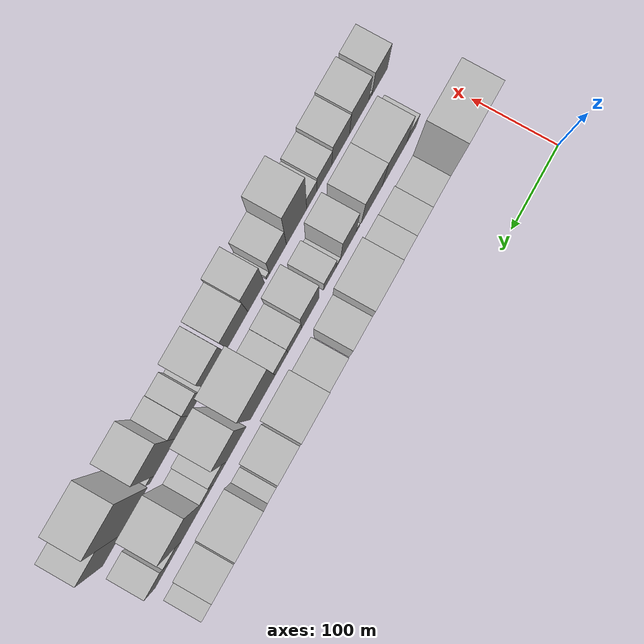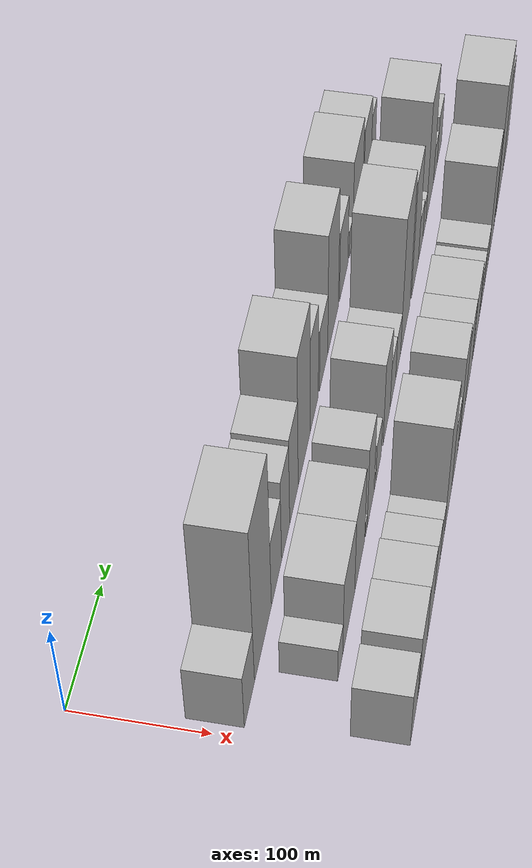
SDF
<sdf version="1.6">
 <world name="default">
  <model name="building_16">
   <static>1</static>
   <pose>100.0000 25.9235 0 0.000000 0.000000 0.000000</pose>
   <link name="link">
    <pose>0 0 31.50 0 0 0</pose>
    <collision name="collision"><geometry><box><size>40.0000 34.9801 63.0000</size></box></geometry></collision>
    <visual name="visual">
     <cast_shadows>0</cast_shadows>
     <geometry><box><size>40.0000 34.9801 63.0000</size></box></geometry>
     <material>
      <script>
       <uri>model://HANNAS_wall/materials/scripts</uri>
       <uri>model://HANNAS_wall/materials/textures</uri>
       <name>vrc/HANNAS_wall</name>
      </script>
     </material>
    </visual>
   </link>
  </model>
  <model name="building_17">
   <static>1</static>
   <pose>100.0000 73.7770 0 0.000000 0.000000 0.000000</pose>
   <link name="link">
    <pose>0 0 88.50 0 0 0</pose>
    <collision name="collision"><geometry><box><size>40.0000 60.7268 177.0000</size></box></geometry></collision>
    <visual name="visual">
     <cast_shadows>0</cast_shadows>
     <geometry><box><size>40.0000 60.7268 177.0000</size></box></geometry>
     <material>
      <script>
       <uri>model://HANNAS_wall/materials/scripts</uri>
       <uri>model://HANNAS_wall/materials/textures</uri>
       <name>vrc/HANNAS_wall</name>
      </script>
     </material>
    </visual>
   </link>
  </model>
  <model name="building_18">
   <static>1</static>
   <pose>100.0000 123.2803 0 0.000000 0.000000 0.000000</pose>
   <link name="link">
    <pose>0 0 37.50 0 0 0</pose>
    <collision name="collision"><geometry><box><size>40.0000 38.2798 75.0000</size></box></geometry></collision>
    <visual name="visual">
     <cast_shadows>0</cast_shadows>
     <geometry><box><size>40.0000 38.2798 75.0000</size></box></geometry>
     <material>
      <script>
       <uri>model://HANNAS_wall/materials/scripts</uri>
       <uri>model://HANNAS_wall/materials/textures</uri>
       <name>vrc/HANNAS_wall</name>
      </script>
     </material>
    </visual>
   </link>
  </model>
  <model name="building_19">
   <static>1</static>
   <pose>100.0000 158.1278 0 0.000000 0.000000 0.000000</pose>
   <link name="link">
    <pose>0 0 46.50 0 0 0</pose>
    <collision name="collision"><geometry><box><size>40.0000 31.4152 93.0000</size></box></geometry></collision>
    <visual name="visual">
     <cast_shadows>0</cast_shadows>
     <geometry><box><size>40.0000 31.4152 93.0000</size></box></geometry>
     <material>
      <script>
       <uri>model://HANNAS_wall/materials/scripts</uri>
       <uri>model://HANNAS_wall/materials/textures</uri>
       <name>vrc/HANNAS_wall</name>
      </script>
     </material>
    </visual>
   </link>
  </model>
  <model name="building_20">
   <static>1</static>
   <pose>100.0000 190.8408 0 0.000000 0.000000 0.000000</pose>
   <link name="link">
    <pose>0 0 49.50 0 0 0</pose>
    <collision name="collision"><geometry><box><size>40.0000 34.0107 99.0000</size></box></geometry></collision>
    <visual name="visual">
     <cast_shadows>0</cast_shadows>
     <geometry><box><size>40.0000 34.0107 99.0000</size></box></geometry>
     <material>
      <script>
       <uri>model://HANNAS_wall/materials/scripts</uri>
       <uri>model://HANNAS_wall/materials/textures</uri>
       <name>vrc/HANNAS_wall</name>
      </script>
     </material>
    </visual>
   </link>
  </model>
  <model name="building_21">
   <static>1</static>
   <pose>100.0000 232.6172 0 0.000000 0.000000 0.000000</pose>
   <link name="link">
    <pose>0 0 73.50 0 0 0</pose>
    <collision name="collision"><geometry><box><size>40.0000 49.5420 147.0000</size></box></geometry></collision>
    <visual name="visual">
     <cast_shadows>0</cast_shadows>
     <geometry><box><size>40.0000 49.5420 147.0000</size></box></geometry>
     <material>
      <script>
       <uri>model://HANNAS_wall/materials/scripts</uri>
       <uri>model://HANNAS_wall/materials/textures</uri>
       <name>vrc/HANNAS_wall</name>
      </script>
     </material>
    </visual>
   </link>
  </model>
  <model name="building_22">
   <static>1</static>
   <pose>100.0000 274.8088 0 0.000000 0.000000 0.000000</pose>
   <link name="link">
    <pose>0 0 52.50 0 0 0</pose>
    <collision name="collision"><geometry><box><size>40.0000 34.8413 105.0000</size></box></geometry></collision>
    <visual name="visual">
     <cast_shadows>0</cast_shadows>
     <geometry><box><size>40.0000 34.8413 105.0000</size></box></geometry>
     <material>
      <script>
       <uri>model://HANNAS_wall/materials/scripts</uri>
       <uri>model://HANNAS_wall/materials/textures</uri>
       <name>vrc/HANNAS_wall</name>
      </script>
     </material>
    </visual>
   </link>
  </model>
  <model name="building_23">
   <static>1</static>
   <pose>100.0000 315.7311 0 0.000000 0.000000 0.000000</pose>
   <link name="link">
    <pose>0 0 34.50 0 0 0</pose>
    <collision name="collision"><geometry><box><size>40.0000 37.0033 69.0000</size></box></geometry></collision>
    <visual name="visual">
     <cast_shadows>0</cast_shadows>
     <geometry><box><size>40.0000 37.0033 69.0000</size></box></geometry>
     <material>
      <script>
       <uri>model://HANNAS_wall/materials/scripts</uri>
       <uri>model://HANNAS_wall/materials/textures</uri>
       <name>vrc/HANNAS_wall</name>
      </script>
     </material>
    </visual>
   </link>
  </model>
  <model name="building_24">
   <static>1</static>
   <pose>100.0000 358.8089 0 0.000000 0.000000 0.000000</pose>
   <link name="link">
    <pose>0 0 66.00 0 0 0</pose>
    <collision name="collision"><geometry><box><size>40.0000 49.1523 132.0000</size></box></geometry></collision>
    <visual name="visual">
     <cast_shadows>0</cast_shadows>
     <geometry><box><size>40.0000 49.1523 132.0000</size></box></geometry>
     <material>
      <script>
       <uri>model://HANNAS_wall/materials/scripts</uri>
       <uri>model://HANNAS_wall/materials/textures</uri>
       <name>vrc/HANNAS_wall</name>
      </script>
     </material>
    </visual>
   </link>
  </model>
  <model name="building_25">
   <static>1</static>
   <pose>100.0000 408.5758 0 0.000000 0.000000 0.000000</pose>
   <link name="link">
    <pose>0 0 39.00 0 0 0</pose>
    <collision name="collision"><geometry><box><size>40.0000 40.3815 78.0000</size></box></geometry></collision>
    <visual name="visual">
     <cast_shadows>0</cast_shadows>
     <geometry><box><size>40.0000 40.3815 78.0000</size></box></geometry>
     <material>
      <script>
       <uri>model://HANNAS_wall/materials/scripts</uri>
       <uri>model://HANNAS_wall/materials/textures</uri>
       <name>vrc/HANNAS_wall</name>
      </script>
     </material>
    </visual>
   </link>
  </model>
  <model name="building_26">
   <static>1</static>
   <pose>100.0000 444.1921 0 0.000000 0.000000 0.000000</pose>
   <link name="link">
    <pose>0 0 15.00 0 0 0</pose>
    <collision name="collision"><geometry><box><size>40.0000 16.8511 30.0000</size></box></geometry></collision>
    <visual name="visual">
     <cast_shadows>0</cast_shadows>
     <geometry><box><size>40.0000 16.8511 30.0000</size></box></geometry>
     <material>
      <script>
       <uri>model://HANNAS_wall/materials/scripts</uri>
       <uri>model://HANNAS_wall/materials/textures</uri>
       <name>vrc/HANNAS_wall</name>
      </script>
     </material>
    </visual>
   </link>
  </model>
  <model name="building_27">
   <static>1</static>
   <pose>100.0000 478.0710 0 0.000000 0.000000 0.000000</pose>
   <link name="link">
    <pose>0 0 45.00 0 0 0</pose>
    <collision name="collision"><geometry><box><size>40.0000 50.9065 90.0000</size></box></geometry></collision>
    <visual name="visual">
     <cast_shadows>0</cast_shadows>
     <geometry><box><size>40.0000 50.9065 90.0000</size></box></geometry>
     <material>
      <script>
       <uri>model://HANNAS_wall/materials/scripts</uri>
       <uri>model://HANNAS_wall/materials/textures</uri>
       <name>vrc/HANNAS_wall</name>
      </script>
     </material>
    </visual>
   </link>
  </model>
  <model name="building_28">
   <static>1</static>
   <pose>100.0000 528.5222 0 0.000000 0.000000 0.000000</pose>
   <link name="link">
    <pose>0 0 36.00 0 0 0</pose>
    <collision name="collision"><geometry><box><size>40.0000 39.9960 72.0000</size></box></geometry></collision>
    <visual name="visual">
     <cast_shadows>0</cast_shadows>
     <geometry><box><size>40.0000 39.9960 72.0000</size></box></geometry>
     <material>
      <script>
       <uri>model://HANNAS_wall/materials/scripts</uri>
       <uri>model://HANNAS_wall/materials/textures</uri>
       <name>vrc/HANNAS_wall</name>
      </script>
     </material>
    </visual>
   </link>
  </model>
  <model name="building_29">
   <static>1</static>
   <pose>100.0000 560.6177 0 0.000000 0.000000 0.000000</pose>
   <link name="link">
    <pose>0 0 24.00 0 0 0</pose>
    <collision name="collision"><geometry><box><size>40.0000 24.1950 48.0000</size></box></geometry></collision>
    <visual name="visual">
     <cast_shadows>0</cast_shadows>
     <geometry><box><size>40.0000 24.1950 48.0000</size></box></geometry>
     <material>
      <script>
       <uri>model://HANNAS_wall/materials/scripts</uri>
       <uri>model://HANNAS_wall/materials/textures</uri>
       <name>vrc/HANNAS_wall</name>
      </script>
     </material>
    </visual>
   </link>
  </model>
  <model name="building_49">
   <static>1</static>
   <pose>155.0000 64.1573 0 0.000000 0.000000 0.000000</pose>
   <link name="link">
    <pose>0 0 19.50 0 0 0</pose>
    <collision name="collision"><geometry><box><size>40.0000 20.7899 39.0000</size></box></geometry></collision>
    <visual name="visual">
     <cast_shadows>0</cast_shadows>
     <geometry><box><size>40.0000 20.7899 39.0000</size></box></geometry>
     <material>
      <script>
       <uri>model://HANNAS_wall/materials/scripts</uri>
       <uri>model://HANNAS_wall/materials/textures</uri>
       <name>vrc/HANNAS_wall</name>
      </script>
     </material>
    </visual>
   </link>
  </model>
  <model name="building_50">
   <static>1</static>
   <pose>155.0000 99.8147 0 0.000000 0.000000 0.000000</pose>
   <link name="link">
    <pose>0 0 43.50 0 0 0</pose>
    <collision name="collision"><geometry><box><size>40.0000 50.5249 87.0000</size></box></geometry></collision>
    <visual name="visual">
     <cast_shadows>0</cast_shadows>
     <geometry><box><size>40.0000 50.5249 87.0000</size></box></geometry>
     <material>
      <script>
       <uri>model://HANNAS_wall/materials/scripts</uri>
       <uri>model://HANNAS_wall/materials/textures</uri>
       <name>vrc/HANNAS_wall</name>
      </script>
     </material>
    </visual>
   </link>
  </model>
  <model name="building_51">
   <static>1</static>
   <pose>155.0000 147.0566 0 0.000000 0.000000 0.000000</pose>
   <link name="link">
    <pose>0 0 43.50 0 0 0</pose>
    <collision name="collision"><geometry><box><size>40.0000 43.9590 87.0000</size></box></geometry></collision>
    <visual name="visual">
     <cast_shadows>0</cast_shadows>
     <geometry><box><size>40.0000 43.9590 87.0000</size></box></geometry>
     <material>
      <script>
       <uri>model://HANNAS_wall/materials/scripts</uri>
       <uri>model://HANNAS_wall/materials/textures</uri>
       <name>vrc/HANNAS_wall</name>
      </script>
     </material>
    </visual>
   </link>
  </model>
  <model name="building_52">
   <static>1</static>
   <pose>155.0000 175.9386 0 0.000000 0.000000 0.000000</pose>
   <link name="link">
    <pose>0 0 9.00 0 0 0</pose>
    <collision name="collision"><geometry><box><size>40.0000 7.8050 18.0000</size></box></geometry></collision>
    <visual name="visual">
     <cast_shadows>0</cast_shadows>
     <geometry><box><size>40.0000 7.8050 18.0000</size></box></geometry>
     <material>
      <script>
       <uri>model://HANNAS_wall/materials/scripts</uri>
       <uri>model://HANNAS_wall/materials/textures</uri>
       <name>vrc/HANNAS_wall</name>
      </script>
     </material>
    </visual>
   </link>
  </model>
  <model name="building_53">
   <static>1</static>
   <pose>155.0000 195.8694 0 0.000000 0.000000 0.000000</pose>
   <link name="link">
    <pose>0 0 46.50 0 0 0</pose>
    <collision name="collision"><geometry><box><size>40.0000 32.0566 93.0000</size></box></geometry></collision>
    <visual name="visual">
     <cast_shadows>0</cast_shadows>
     <geometry><box><size>40.0000 32.0566 93.0000</size></box></geometry>
     <material>
      <script>
       <uri>model://HANNAS_wall/materials/scripts</uri>
       <uri>model://HANNAS_wall/materials/textures</uri>
       <name>vrc/HANNAS_wall</name>
      </script>
     </material>
    </visual>
   </link>
  </model>
  <model name="building_54">
   <static>1</static>
   <pose>155.0000 216.0063 0 0.000000 0.000000 0.000000</pose>
   <link name="link">
    <pose>0 0 9.00 0 0 0</pose>
    <collision name="collision"><geometry><box><size>40.0000 8.2171 18.0000</size></box></geometry></collision>
    <visual name="visual">
     <cast_shadows>0</cast_shadows>
     <geometry><box><size>40.0000 8.2171 18.0000</size></box></geometry>
     <material>
      <script>
       <uri>model://HANNAS_wall/materials/scripts</uri>
       <uri>model://HANNAS_wall/materials/textures</uri>
       <name>vrc/HANNAS_wall</name>
      </script>
     </material>
    </visual>
   </link>
  </model>
  <model name="building_55">
   <static>1</static>
   <pose>155.0000 233.1701 0 0.000000 0.000000 0.000000</pose>
   <link name="link">
    <pose>0 0 22.50 0 0 0</pose>
    <collision name="collision"><geometry><box><size>40.0000 26.1104 45.0000</size></box></geometry></collision>
    <visual name="visual">
     <cast_shadows>0</cast_shadows>
     <geometry><box><size>40.0000 26.1104 45.0000</size></box></geometry>
     <material>
      <script>
       <uri>model://HANNAS_wall/materials/scripts</uri>
       <uri>model://HANNAS_wall/materials/textures</uri>
       <name>vrc/HANNAS_wall</name>
      </script>
     </material>
    </visual>
   </link>
  </model>
  <model name="building_56">
   <static>1</static>
   <pose>155.0000 272.7713 0 0.000000 0.000000 0.000000</pose>
   <link name="link">
    <pose>0 0 46.50 0 0 0</pose>
    <collision name="collision"><geometry><box><size>40.0000 35.0920 93.0000</size></box></geometry></collision>
    <visual name="visual">
     <cast_shadows>0</cast_shadows>
     <geometry><box><size>40.0000 35.0920 93.0000</size></box></geometry>
     <material>
      <script>
       <uri>model://HANNAS_wall/materials/scripts</uri>
       <uri>model://HANNAS_wall/materials/textures</uri>
       <name>vrc/HANNAS_wall</name>
      </script>
     </material>
    </visual>
   </link>
  </model>
  <model name="building_57">
   <static>1</static>
   <pose>155.0000 304.2109 0 0.000000 0.000000 0.000000</pose>
   <link name="link">
    <pose>0 0 25.50 0 0 0</pose>
    <collision name="collision"><geometry><box><size>40.0000 27.7874 51.0000</size></box></geometry></collision>
    <visual name="visual">
     <cast_shadows>0</cast_shadows>
     <geometry><box><size>40.0000 27.7874 51.0000</size></box></geometry>
     <material>
      <script>
       <uri>model://HANNAS_wall/materials/scripts</uri>
       <uri>model://HANNAS_wall/materials/textures</uri>
       <name>vrc/HANNAS_wall</name>
      </script>
     </material>
    </visual>
   </link>
  </model>
  <model name="building_58">
   <static>1</static>
   <pose>155.0000 330.7806 0 0.000000 0.000000 0.000000</pose>
   <link name="link">
    <pose>0 0 24.00 0 0 0</pose>
    <collision name="collision"><geometry><box><size>40.0000 25.3520 48.0000</size></box></geometry></collision>
    <visual name="visual">
     <cast_shadows>0</cast_shadows>
     <geometry><box><size>40.0000 25.3520 48.0000</size></box></geometry>
     <material>
      <script>
       <uri>model://HANNAS_wall/materials/scripts</uri>
       <uri>model://HANNAS_wall/materials/textures</uri>
       <name>vrc/HANNAS_wall</name>
      </script>
     </material>
    </visual>
   </link>
  </model>
  <model name="building_59">
   <static>1</static>
   <pose>155.0000 368.5979 0 0.000000 0.000000 0.000000</pose>
   <link name="link">
    <pose>0 0 75.00 0 0 0</pose>
    <collision name="collision"><geometry><box><size>40.0000 50.2825 150.0000</size></box></geometry></collision>
    <visual name="visual">
     <cast_shadows>0</cast_shadows>
     <geometry><box><size>40.0000 50.2825 150.0000</size></box></geometry>
     <material>
      <script>
       <uri>model://HANNAS_wall/materials/scripts</uri>
       <uri>model://HANNAS_wall/materials/textures</uri>
       <name>vrc/HANNAS_wall</name>
      </script>
     </material>
    </visual>
   </link>
  </model>
  <model name="building_60">
   <static>1</static>
   <pose>155.0000 421.3040 0 0.000000 0.000000 0.000000</pose>
   <link name="link">
    <pose>0 0 64.50 0 0 0</pose>
    <collision name="collision"><geometry><box><size>40.0000 39.1298 129.0000</size></box></geometry></collision>
    <visual name="visual">
     <cast_shadows>0</cast_shadows>
     <geometry><box><size>40.0000 39.1298 129.0000</size></box></geometry>
     <material>
      <script>
       <uri>model://HANNAS_wall/materials/scripts</uri>
       <uri>model://HANNAS_wall/materials/textures</uri>
       <name>vrc/HANNAS_wall</name>
      </script>
     </material>
    </visual>
   </link>
  </model>
  <model name="building_61">
   <static>1</static>
   <pose>155.0000 453.6986 0 0.000000 0.000000 0.000000</pose>
   <link name="link">
    <pose>0 0 22.50 0 0 0</pose>
    <collision name="collision"><geometry><box><size>40.0000 25.6594 45.0000</size></box></geometry></collision>
    <visual name="visual">
     <cast_shadows>0</cast_shadows>
     <geometry><box><size>40.0000 25.6594 45.0000</size></box></geometry>
     <material>
      <script>
       <uri>model://HANNAS_wall/materials/scripts</uri>
       <uri>model://HANNAS_wall/materials/textures</uri>
       <name>vrc/HANNAS_wall</name>
      </script>
     </material>
    </visual>
   </link>
  </model>
  <model name="building_62">
   <static>1</static>
   <pose>155.0000 475.5617 0 0.000000 0.000000 0.000000</pose>
   <link name="link">
    <pose>0 0 18.00 0 0 0</pose>
    <collision name="collision"><geometry><box><size>40.0000 18.0668 36.0000</size></box></geometry></collision>
    <visual name="visual">
     <cast_shadows>0</cast_shadows>
     <geometry><box><size>40.0000 18.0668 36.0000</size></box></geometry>
     <material>
      <script>
       <uri>model://HANNAS_wall/materials/scripts</uri>
       <uri>model://HANNAS_wall/materials/textures</uri>
       <name>vrc/HANNAS_wall</name>
      </script>
     </material>
    </visual>
   </link>
  </model>
  <model name="building_63">
   <static>1</static>
   <pose>155.0000 506.8843 0 0.000000 0.000000 0.000000</pose>
   <link name="link">
    <pose>0 0 66.00 0 0 0</pose>
    <collision name="collision"><geometry><box><size>40.0000 44.5785 132.0000</size></box></geometry></collision>
    <visual name="visual">
     <cast_shadows>0</cast_shadows>
     <geometry><box><size>40.0000 44.5785 132.0000</size></box></geometry>
     <material>
      <script>
       <uri>model://HANNAS_wall/materials/scripts</uri>
       <uri>model://HANNAS_wall/materials/textures</uri>
       <name>vrc/HANNAS_wall</name>
      </script>
     </material>
    </visual>
   </link>
  </model>
  <model name="building_64">
   <static>1</static>
   <pose>155.0000 540.5190 0 0.000000 0.000000 0.000000</pose>
   <link name="link">
    <pose>0 0 19.50 0 0 0</pose>
    <collision name="collision"><geometry><box><size>40.0000 22.6908 39.0000</size></box></geometry></collision>
    <visual name="visual">
     <cast_shadows>0</cast_shadows>
     <geometry><box><size>40.0000 22.6908 39.0000</size></box></geometry>
     <material>
      <script>
       <uri>model://HANNAS_wall/materials/scripts</uri>
       <uri>model://HANNAS_wall/materials/textures</uri>
       <name>vrc/HANNAS_wall</name>
      </script>
     </material>
    </visual>
   </link>
  </model>
  <model name="building_65">
   <static>1</static>
   <pose>155.0000 566.0299 0 0.000000 0.000000 0.000000</pose>
   <link name="link">
    <pose>0 0 27.00 0 0 0</pose>
    <collision name="collision"><geometry><box><size>40.0000 28.3309 54.0000</size></box></geometry></collision>
    <visual name="visual">
     <cast_shadows>0</cast_shadows>
     <geometry><box><size>40.0000 28.3309 54.0000</size></box></geometry>
     <material>
      <script>
       <uri>model://HANNAS_wall/materials/scripts</uri>
       <uri>model://HANNAS_wall/materials/textures</uri>
       <name>vrc/HANNAS_wall</name>
      </script>
     </material>
    </visual>
   </link>
  </model>
  <model name="building_82">
   <static>1</static>
   <pose>210.0000 31.1383 0 0.000000 0.000000 0.000000</pose>
   <link name="link">
    <pose>0 0 31.50 0 0 0</pose>
    <collision name="collision"><geometry><box><size>40.0000 33.1116 63.0000</size></box></geometry></collision>
    <visual name="visual">
     <cast_shadows>0</cast_shadows>
     <geometry><box><size>40.0000 33.1116 63.0000</size></box></geometry>
     <material>
      <script>
       <uri>model://HANNAS_wall/materials/scripts</uri>
       <uri>model://HANNAS_wall/materials/textures</uri>
       <name>vrc/HANNAS_wall</name>
      </script>
     </material>
    </visual>
   </link>
  </model>
  <model name="building_83">
   <static>1</static>
   <pose>210.0000 50.8803 0 0.000000 0.000000 0.000000</pose>
   <link name="link">
    <pose>0 0 7.50 0 0 0</pose>
    <collision name="collision"><geometry><box><size>40.0000 6.3724 15.0000</size></box></geometry></collision>
    <visual name="visual">
     <cast_shadows>0</cast_shadows>
     <geometry><box><size>40.0000 6.3724 15.0000</size></box></geometry>
     <material>
      <script>
       <uri>model://HANNAS_wall/materials/scripts</uri>
       <uri>model://HANNAS_wall/materials/textures</uri>
       <name>vrc/HANNAS_wall</name>
      </script>
     </material>
    </visual>
   </link>
  </model>
  <model name="building_84">
   <static>1</static>
   <pose>210.0000 74.2972 0 0.000000 0.000000 0.000000</pose>
   <link name="link">
    <pose>0 0 34.50 0 0 0</pose>
    <collision name="collision"><geometry><box><size>40.0000 40.4615 69.0000</size></box></geometry></collision>
    <visual name="visual">
     <cast_shadows>0</cast_shadows>
     <geometry><box><size>40.0000 40.4615 69.0000</size></box></geometry>
     <material>
      <script>
       <uri>model://HANNAS_wall/materials/scripts</uri>
       <uri>model://HANNAS_wall/materials/textures</uri>
       <name>vrc/HANNAS_wall</name>
      </script>
     </material>
    </visual>
   </link>
  </model>
  <model name="building_85">
   <static>1</static>
   <pose>210.0000 112.7537 0 0.000000 0.000000 0.000000</pose>
   <link name="link">
    <pose>0 0 31.50 0 0 0</pose>
    <collision name="collision"><geometry><box><size>40.0000 36.4514 63.0000</size></box></geometry></collision>
    <visual name="visual">
     <cast_shadows>0</cast_shadows>
     <geometry><box><size>40.0000 36.4514 63.0000</size></box></geometry>
     <material>
      <script>
       <uri>model://HANNAS_wall/materials/scripts</uri>
       <uri>model://HANNAS_wall/materials/textures</uri>
       <name>vrc/HANNAS_wall</name>
      </script>
     </material>
    </visual>
   </link>
  </model>
  <model name="building_86">
   <static>1</static>
   <pose>210.0000 146.2543 0 0.000000 0.000000 0.000000</pose>
   <link name="link">
    <pose>0 0 25.50 0 0 0</pose>
    <collision name="collision"><geometry><box><size>40.0000 30.5498 51.0000</size></box></geometry></collision>
    <visual name="visual">
     <cast_shadows>0</cast_shadows>
     <geometry><box><size>40.0000 30.5498 51.0000</size></box></geometry>
     <material>
      <script>
       <uri>model://HANNAS_wall/materials/scripts</uri>
       <uri>model://HANNAS_wall/materials/textures</uri>
       <name>vrc/HANNAS_wall</name>
      </script>
     </material>
    </visual>
   </link>
  </model>
  <model name="building_87">
   <static>1</static>
   <pose>210.0000 172.1544 0 0.000000 0.000000 0.000000</pose>
   <link name="link">
    <pose>0 0 21.00 0 0 0</pose>
    <collision name="collision"><geometry><box><size>40.0000 21.2505 42.0000</size></box></geometry></collision>
    <visual name="visual">
     <cast_shadows>0</cast_shadows>
     <geometry><box><size>40.0000 21.2505 42.0000</size></box></geometry>
     <material>
      <script>
       <uri>model://HANNAS_wall/materials/scripts</uri>
       <uri>model://HANNAS_wall/materials/textures</uri>
       <name>vrc/HANNAS_wall</name>
      </script>
     </material>
    </visual>
   </link>
  </model>
  <model name="building_88">
   <static>1</static>
   <pose>210.0000 203.4781 0 0.000000 0.000000 0.000000</pose>
   <link name="link">
    <pose>0 0 63.00 0 0 0</pose>
    <collision name="collision"><geometry><box><size>40.0000 41.3969 126.0000</size></box></geometry></collision>
    <visual name="visual">
     <cast_shadows>0</cast_shadows>
     <geometry><box><size>40.0000 41.3969 126.0000</size></box></geometry>
     <material>
      <script>
       <uri>model://HANNAS_wall/materials/scripts</uri>
       <uri>model://HANNAS_wall/materials/textures</uri>
       <name>vrc/HANNAS_wall</name>
      </script>
     </material>
    </visual>
   </link>
  </model>
  <model name="building_89">
   <static>1</static>
   <pose>210.0000 241.2646 0 0.000000 0.000000 0.000000</pose>
   <link name="link">
    <pose>0 0 33.00 0 0 0</pose>
    <collision name="collision"><geometry><box><size>40.0000 34.1762 66.0000</size></box></geometry></collision>
    <visual name="visual">
     <cast_shadows>0</cast_shadows>
     <geometry><box><size>40.0000 34.1762 66.0000</size></box></geometry>
     <material>
      <script>
       <uri>model://HANNAS_wall/materials/scripts</uri>
       <uri>model://HANNAS_wall/materials/textures</uri>
       <name>vrc/HANNAS_wall</name>
      </script>
     </material>
    </visual>
   </link>
  </model>
  <model name="building_90">
   <static>1</static>
   <pose>210.0000 261.4249 0 0.000000 0.000000 0.000000</pose>
   <link name="link">
    <pose>0 0 7.50 0 0 0</pose>
    <collision name="collision"><geometry><box><size>40.0000 6.1443 15.0000</size></box></geometry></collision>
    <visual name="visual">
     <cast_shadows>0</cast_shadows>
     <geometry><box><size>40.0000 6.1443 15.0000</size></box></geometry>
     <material>
      <script>
       <uri>model://HANNAS_wall/materials/scripts</uri>
       <uri>model://HANNAS_wall/materials/textures</uri>
       <name>vrc/HANNAS_wall</name>
      </script>
     </material>
    </visual>
   </link>
  </model>
  <model name="building_91">
   <static>1</static>
   <pose>210.0000 285.2325 0 0.000000 0.000000 0.000000</pose>
   <link name="link">
    <pose>0 0 48.00 0 0 0</pose>
    <collision name="collision"><geometry><box><size>40.0000 33.4708 96.0000</size></box></geometry></collision>
    <visual name="visual">
     <cast_shadows>0</cast_shadows>
     <geometry><box><size>40.0000 33.4708 96.0000</size></box></geometry>
     <material>
      <script>
       <uri>model://HANNAS_wall/materials/scripts</uri>
       <uri>model://HANNAS_wall/materials/textures</uri>
       <name>vrc/HANNAS_wall</name>
      </script>
     </material>
    </visual>
   </link>
  </model>
  <model name="building_92">
   <static>1</static>
   <pose>210.0000 322.8020 0 0.000000 0.000000 0.000000</pose>
   <link name="link">
    <pose>0 0 37.50 0 0 0</pose>
    <collision name="collision"><geometry><box><size>40.0000 41.6681 75.0000</size></box></geometry></collision>
    <visual name="visual">
     <cast_shadows>0</cast_shadows>
     <geometry><box><size>40.0000 41.6681 75.0000</size></box></geometry>
     <material>
      <script>
       <uri>model://HANNAS_wall/materials/scripts</uri>
       <uri>model://HANNAS_wall/materials/textures</uri>
       <name>vrc/HANNAS_wall</name>
      </script>
     </material>
    </visual>
   </link>
  </model>
  <model name="building_93">
   <static>1</static>
   <pose>210.0000 367.6722 0 0.000000 0.000000 0.000000</pose>
   <link name="link">
    <pose>0 0 34.50 0 0 0</pose>
    <collision name="collision"><geometry><box><size>40.0000 40.0724 69.0000</size></box></geometry></collision>
    <visual name="visual">
     <cast_shadows>0</cast_shadows>
     <geometry><box><size>40.0000 40.0724 69.0000</size></box></geometry>
     <material>
      <script>
       <uri>model://HANNAS_wall/materials/scripts</uri>
       <uri>model://HANNAS_wall/materials/textures</uri>
       <name>vrc/HANNAS_wall</name>
      </script>
     </material>
    </visual>
   </link>
  </model>
  <model name="building_94">
   <static>1</static>
   <pose>210.0000 391.4337 0 0.000000 0.000000 0.000000</pose>
   <link name="link">
    <pose>0 0 9.00 0 0 0</pose>
    <collision name="collision"><geometry><box><size>40.0000 7.4506 18.0000</size></box></geometry></collision>
    <visual name="visual">
     <cast_shadows>0</cast_shadows>
     <geometry><box><size>40.0000 7.4506 18.0000</size></box></geometry>
     <material>
      <script>
       <uri>model://HANNAS_wall/materials/scripts</uri>
       <uri>model://HANNAS_wall/materials/textures</uri>
       <name>vrc/HANNAS_wall</name>
      </script>
     </material>
    </visual>
   </link>
  </model>
  <model name="building_95">
   <static>1</static>
   <pose>210.0000 407.8223 0 0.000000 0.000000 0.000000</pose>
   <link name="link">
    <pose>0 0 22.50 0 0 0</pose>
    <collision name="collision"><geometry><box><size>40.0000 25.3265 45.0000</size></box></geometry></collision>
    <visual name="visual">
     <cast_shadows>0</cast_shadows>
     <geometry><box><size>40.0000 25.3265 45.0000</size></box></geometry>
     <material>
      <script>
       <uri>model://HANNAS_wall/materials/scripts</uri>
       <uri>model://HANNAS_wall/materials/textures</uri>
       <name>vrc/HANNAS_wall</name>
      </script>
     </material>
    </visual>
   </link>
  </model>
  <model name="building_96">
   <static>1</static>
   <pose>210.0000 433.2209 0 0.000000 0.000000 0.000000</pose>
   <link name="link">
    <pose>0 0 24.00 0 0 0</pose>
    <collision name="collision"><geometry><box><size>40.0000 25.4708 48.0000</size></box></geometry></collision>
    <visual name="visual">
     <cast_shadows>0</cast_shadows>
     <geometry><box><size>40.0000 25.4708 48.0000</size></box></geometry>
     <material>
      <script>
       <uri>model://HANNAS_wall/materials/scripts</uri>
       <uri>model://HANNAS_wall/materials/textures</uri>
       <name>vrc/HANNAS_wall</name>
      </script>
     </material>
    </visual>
   </link>
  </model>
  <model name="building_97">
   <static>1</static>
   <pose>210.0000 466.7809 0 0.000000 0.000000 0.000000</pose>
   <link name="link">
    <pose>0 0 55.50 0 0 0</pose>
    <collision name="collision"><geometry><box><size>40.0000 41.6492 111.0000</size></box></geometry></collision>
    <visual name="visual">
     <cast_shadows>0</cast_shadows>
     <geometry><box><size>40.0000 41.6492 111.0000</size></box></geometry>
     <material>
      <script>
       <uri>model://HANNAS_wall/materials/scripts</uri>
       <uri>model://HANNAS_wall/materials/textures</uri>
       <name>vrc/HANNAS_wall</name>
      </script>
     </material>
    </visual>
   </link>
  </model>
  <model name="building_98">
   <static>1</static>
   <pose>210.0000 492.0316 0 0.000000 0.000000 0.000000</pose>
   <link name="link">
    <pose>0 0 10.50 0 0 0</pose>
    <collision name="collision"><geometry><box><size>40.0000 8.8520 21.0000</size></box></geometry></collision>
    <visual name="visual">
     <cast_shadows>0</cast_shadows>
     <geometry><box><size>40.0000 8.8520 21.0000</size></box></geometry>
     <material>
      <script>
       <uri>model://HANNAS_wall/materials/scripts</uri>
       <uri>model://HANNAS_wall/materials/textures</uri>
       <name>vrc/HANNAS_wall</name>
      </script>
     </material>
    </visual>
   </link>
  </model>
  <model name="building_99">
   <static>1</static>
   <pose>210.0000 526.6160 0 0.000000 0.000000 0.000000</pose>
   <link name="link">
    <pose>0 0 72.00 0 0 0</pose>
    <collision name="collision"><geometry><box><size>40.0000 52.3168 144.0000</size></box></geometry></collision>
    <visual name="visual">
     <cast_shadows>0</cast_shadows>
     <geometry><box><size>40.0000 52.3168 144.0000</size></box></geometry>
     <material>
      <script>
       <uri>model://HANNAS_wall/materials/scripts</uri>
       <uri>model://HANNAS_wall/materials/textures</uri>
       <name>vrc/HANNAS_wall</name>
      </script>
     </material>
    </visual>
   </link>
  </model>
  <model name="building_100">
   <static>1</static>
   <pose>210.0000 569.8472 0 0.000000 0.000000 0.000000</pose>
   <link name="link">
    <pose>0 0 49.50 0 0 0</pose>
    <collision name="collision"><geometry><box><size>40.0000 34.1456 99.0000</size></box></geometry></collision>
    <visual name="visual">
     <cast_shadows>0</cast_shadows>
     <geometry><box><size>40.0000 34.1456 99.0000</size></box></geometry>
     <material>
      <script>
       <uri>model://HANNAS_wall/materials/scripts</uri>
       <uri>model://HANNAS_wall/materials/textures</uri>
       <name>vrc/HANNAS_wall</name>
      </script>
     </material>
    </visual>
   </link>
  </model>
 </world>
</sdf>
